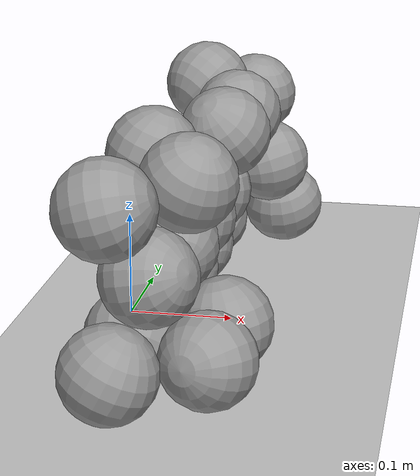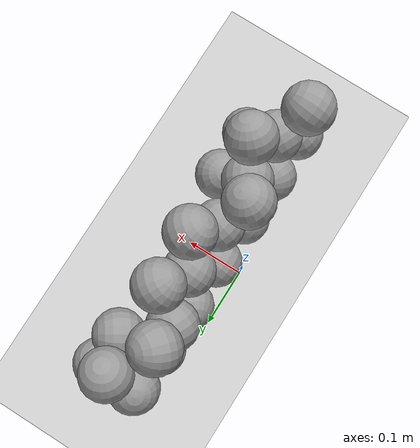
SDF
<sdf version="1.6">
 <world name="default">
  <model name="ground_plane">
   <static>1</static>
   <link name="link">
    <collision name="collision">
     <geometry><plane><normal>0 0 1</normal><size>100 100</size></plane></geometry>
     <surface>
      <contact><collide_bitmask>65535</collide_bitmask></contact>
      <friction><ode><mu>100</mu><mu2>50</mu2></ode></friction>
     </surface>
    </collision>
    <visual name="visual">
     <cast_shadows>0</cast_shadows>
     <geometry><plane><normal>0 0 1</normal><size>100 100</size></plane></geometry>
     <material>
      <script><uri>file://media/materials/scripts/gazebo.material</uri><name>Gazebo/Grey</name></script>
     </material>
    </visual>
   </link>
  </model>
  <model name="unit_sphere_clone_10">
   <link name="link">
    <inertial>
     <mass>0.000642099</mass>
     <inertia>
      <ixx>4.77879e-07</ixx>
      <ixy>0</ixy>
      <ixz>0</ixz>
      <iyy>4.77879e-07</iyy>
      <iyz>0</iyz>
      <izz>4.77879e-07</izz>
     </inertia>
    </inertial>
    <visual name="visual">
     <geometry><sphere><radius>0.0431354</radius></sphere></geometry>
     <material>
      <script><name>Gazebo/Grey</name><uri>file://media/materials/scripts/gazebo.material</uri></script>
      <shader type="pixel"/>
      <ambient>0.3 0.3 0.3 1</ambient>
      <diffuse>0.7 0.7 0.7 1</diffuse>
      <specular>0.01 0.01 0.01 1</specular>
      <emissive>0 0 0 1</emissive>
     </material>
    </visual>
    <collision name="collision">
     <geometry><sphere><radius>0.043135</radius></sphere></geometry>
     <surface>
      <friction>
       <ode><mu>1</mu><mu2>1</mu2><fdir1>0 0 0</fdir1><slip1>0</slip1><slip2>0</slip2></ode>
       <torsional>
        <coefficient>1</coefficient>
        <patch_radius>0</patch_radius>
        <surface_radius>0</surface_radius>
        <use_patch_radius>1</use_patch_radius>
        <ode><slip>0</slip></ode>
       </torsional>
      </friction>
      <bounce><restitution_coefficient>0</restitution_coefficient><threshold>1e+06</threshold></bounce>
      <contact>
       <collide_without_contact>0</collide_without_contact>
       <collide_without_contact_bitmask>1</collide_without_contact_bitmask>
       <collide_bitmask>1</collide_bitmask>
       <ode>
        <soft_cfm>0</soft_cfm>
        <soft_erp>0.2</soft_erp>
        <kp>1e+13</kp>
        <kd>1</kd>
        <max_vel>0.01</max_vel>
        <min_depth>0</min_depth>
       </ode>
       <bullet>
        <split_impulse>1</split_impulse>
        <split_impulse_penetration_threshold>-0.01</split_impulse_penetration_threshold>
        <soft_cfm>0</soft_cfm>
        <soft_erp>0.2</soft_erp>
        <kp>1e+13</kp>
        <kd>1</kd>
       </bullet>
      </contact>
     </surface>
    </collision>
   </link>
   <static>0</static>
   <pose>0.040377 -0.249262 0.043127 -0.408895 -0.242678 -2.0554</pose>
  </model>
  <model name="unit_sphere_clone_2_clone_2">
   <link name="link">
    <inertial>
     <mass>0.000642099</mass>
     <inertia>
      <ixx>4.77879e-07</ixx>
      <ixy>0</ixy>
      <ixz>0</ixz>
      <iyy>4.77879e-07</iyy>
      <iyz>0</iyz>
      <izz>4.77879e-07</izz>
     </inertia>
    </inertial>
    <visual name="visual">
     <geometry><sphere><radius>0.0431354</radius></sphere></geometry>
     <material>
      <script><name>Gazebo/Grey</name><uri>file://media/materials/scripts/gazebo.material</uri></script>
      <shader type="pixel"/>
      <ambient>0.3 0.3 0.3 1</ambient>
      <diffuse>0.7 0.7 0.7 1</diffuse>
      <specular>0.01 0.01 0.01 1</specular>
      <emissive>0 0 0 1</emissive>
     </material>
    </visual>
    <collision name="collision">
     <geometry><sphere><radius>0.043135</radius></sphere></geometry>
     <surface>
      <friction>
       <ode><mu>1</mu><mu2>1</mu2><fdir1>0 0 0</fdir1><slip1>0</slip1><slip2>0</slip2></ode>
       <torsional>
        <coefficient>1</coefficient>
        <patch_radius>0</patch_radius>
        <surface_radius>0</surface_radius>
        <use_patch_radius>1</use_patch_radius>
        <ode><slip>0</slip></ode>
       </torsional>
      </friction>
      <bounce><restitution_coefficient>0</restitution_coefficient><threshold>1e+06</threshold></bounce>
      <contact>
       <collide_without_contact>0</collide_without_contact>
       <collide_without_contact_bitmask>1</collide_without_contact_bitmask>
       <collide_bitmask>1</collide_bitmask>
       <ode>
        <soft_cfm>0</soft_cfm>
        <soft_erp>0.2</soft_erp>
        <kp>1e+13</kp>
        <kd>1</kd>
        <max_vel>0.01</max_vel>
        <min_depth>0</min_depth>
       </ode>
       <bullet>
        <split_impulse>1</split_impulse>
        <split_impulse_penetration_threshold>-0.01</split_impulse_penetration_threshold>
        <soft_cfm>0</soft_cfm>
        <soft_erp>0.2</soft_erp>
        <kp>1e+13</kp>
        <kd>1</kd>
       </bullet>
      </contact>
     </surface>
    </collision>
   </link>
   <static>0</static>
   <pose>0.041109 -0.076719 0.043134 -2.75724 -0.637083 -1.52655</pose>
  </model>
  <model name="unit_sphere_clone_2_clone_3">
   <link name="link">
    <inertial>
     <mass>0.000642099</mass>
     <inertia>
      <ixx>4.77879e-07</ixx>
      <ixy>0</ixy>
      <ixz>0</ixz>
      <iyy>4.77879e-07</iyy>
      <iyz>0</iyz>
      <izz>4.77879e-07</izz>
     </inertia>
    </inertial>
    <visual name="visual">
     <geometry><sphere><radius>0.0431354</radius></sphere></geometry>
     <material>
      <script><name>Gazebo/Grey</name><uri>file://media/materials/scripts/gazebo.material</uri></script>
      <shader type="pixel"/>
      <ambient>0.3 0.3 0.3 1</ambient>
      <diffuse>0.7 0.7 0.7 1</diffuse>
      <specular>0.01 0.01 0.01 1</specular>
      <emissive>0 0 0 1</emissive>
     </material>
    </visual>
    <collision name="collision">
     <geometry><sphere><radius>0.043135</radius></sphere></geometry>
     <surface>
      <friction>
       <ode><mu>1</mu><mu2>1</mu2><fdir1>0 0 0</fdir1><slip1>0</slip1><slip2>0</slip2></ode>
       <torsional>
        <coefficient>1</coefficient>
        <patch_radius>0</patch_radius>
        <surface_radius>0</surface_radius>
        <use_patch_radius>1</use_patch_radius>
        <ode><slip>0</slip></ode>
       </torsional>
      </friction>
      <bounce><restitution_coefficient>0</restitution_coefficient><threshold>1e+06</threshold></bounce>
      <contact>
       <collide_without_contact>0</collide_without_contact>
       <collide_without_contact_bitmask>1</collide_without_contact_bitmask>
       <collide_bitmask>1</collide_bitmask>
       <ode>
        <soft_cfm>0</soft_cfm>
        <soft_erp>0.2</soft_erp>
        <kp>1e+13</kp>
        <kd>1</kd>
        <max_vel>0.01</max_vel>
        <min_depth>0</min_depth>
       </ode>
       <bullet>
        <split_impulse>1</split_impulse>
        <split_impulse_penetration_threshold>-0.01</split_impulse_penetration_threshold>
        <soft_cfm>0</soft_cfm>
        <soft_erp>0.2</soft_erp>
        <kp>1e+13</kp>
        <kd>1</kd>
       </bullet>
      </contact>
     </surface>
    </collision>
   </link>
   <static>0</static>
   <pose>0.041477 0.00955 0.043135 -2.13247 0.784232 1.08708</pose>
  </model>
  <model name="unit_sphere_clone_2_clone_2_clone_3_clone_clone_clone_clone">
   <link name="link">
    <inertial>
     <mass>0.000642099</mass>
     <inertia>
      <ixx>4.77879e-07</ixx>
      <ixy>0</ixy>
      <ixz>0</ixz>
      <iyy>4.77879e-07</iyy>
      <iyz>0</iyz>
      <izz>4.77879e-07</izz>
     </inertia>
    </inertial>
    <visual name="visual">
     <geometry><sphere><radius>0.0431354</radius></sphere></geometry>
     <material>
      <script><name>Gazebo/Grey</name><uri>file://media/materials/scripts/gazebo.material</uri></script>
      <shader type="pixel"/>
      <ambient>0.3 0.3 0.3 1</ambient>
      <diffuse>0.7 0.7 0.7 1</diffuse>
      <specular>0.01 0.01 0.01 1</specular>
      <emissive>0 0 0 1</emissive>
     </material>
    </visual>
    <collision name="collision">
     <geometry><sphere><radius>0.043135</radius></sphere></geometry>
     <surface>
      <friction>
       <ode><mu>1</mu><mu2>1</mu2><fdir1>0 0 0</fdir1><slip1>0</slip1><slip2>0</slip2></ode>
       <torsional>
        <coefficient>1</coefficient>
        <patch_radius>0</patch_radius>
        <surface_radius>0</surface_radius>
        <use_patch_radius>1</use_patch_radius>
        <ode><slip>0</slip></ode>
       </torsional>
      </friction>
      <bounce><restitution_coefficient>0</restitution_coefficient><threshold>1e+06</threshold></bounce>
      <contact>
       <collide_without_contact>0</collide_without_contact>
       <collide_without_contact_bitmask>1</collide_without_contact_bitmask>
       <collide_bitmask>1</collide_bitmask>
       <ode>
        <soft_cfm>0</soft_cfm>
        <soft_erp>0.2</soft_erp>
        <kp>1e+13</kp>
        <kd>1</kd>
        <max_vel>0.01</max_vel>
        <min_depth>0</min_depth>
       </ode>
       <bullet>
        <split_impulse>1</split_impulse>
        <split_impulse_penetration_threshold>-0.01</split_impulse_penetration_threshold>
        <soft_cfm>0</soft_cfm>
        <soft_erp>0.2</soft_erp>
        <kp>1e+13</kp>
        <kd>1</kd>
       </bullet>
      </contact>
     </surface>
    </collision>
   </link>
   <static>0</static>
   <pose>0.04074 -0.162992 0.043135 -2.35775 0.164103 2.86462</pose>
  </model>
  <model name="unit_sphere_clone_2_clone_2_clone_3_clone_clone_clone_0_clone_clone_clone">
   <link name="link">
    <inertial>
     <mass>0.000642099</mass>
     <inertia>
      <ixx>4.77879e-07</ixx>
      <ixy>0</ixy>
      <ixz>0</ixz>
      <iyy>4.77879e-07</iyy>
      <iyz>0</iyz>
      <izz>4.77879e-07</izz>
     </inertia>
    </inertial>
    <visual name="visual">
     <geometry><sphere><radius>0.0431354</radius></sphere></geometry>
     <material>
      <script><name>Gazebo/Grey</name><uri>file://media/materials/scripts/gazebo.material</uri></script>
      <shader type="pixel"/>
      <ambient>0.3 0.3 0.3 1</ambient>
      <diffuse>0.7 0.7 0.7 1</diffuse>
      <specular>0.01 0.01 0.01 1</specular>
      <emissive>0 0 0 1</emissive>
     </material>
    </visual>
    <collision name="collision">
     <geometry><sphere><radius>0.043135</radius></sphere></geometry>
     <surface>
      <friction>
       <ode><mu>1</mu><mu2>1</mu2><fdir1>0 0 0</fdir1><slip1>0</slip1><slip2>0</slip2></ode>
       <torsional>
        <coefficient>1</coefficient>
        <patch_radius>0</patch_radius>
        <surface_radius>0</surface_radius>
        <use_patch_radius>1</use_patch_radius>
        <ode><slip>0</slip></ode>
       </torsional>
      </friction>
      <bounce><restitution_coefficient>0</restitution_coefficient><threshold>1e+06</threshold></bounce>
      <contact>
       <collide_without_contact>0</collide_without_contact>
       <collide_without_contact_bitmask>1</collide_without_contact_bitmask>
       <collide_bitmask>1</collide_bitmask>
       <ode>
        <soft_cfm>0</soft_cfm>
        <soft_erp>0.2</soft_erp>
        <kp>1e+13</kp>
        <kd>1</kd>
        <max_vel>0.01</max_vel>
        <min_depth>0</min_depth>
       </ode>
       <bullet>
        <split_impulse>1</split_impulse>
        <split_impulse_penetration_threshold>-0.01</split_impulse_penetration_threshold>
        <soft_cfm>0</soft_cfm>
        <soft_erp>0.2</soft_erp>
        <kp>1e+13</kp>
        <kd>1</kd>
       </bullet>
      </contact>
     </surface>
    </collision>
   </link>
   <static>0</static>
   <pose>0.115634 -0.120174 0.043135 3.12467 -0.26362 -0.311444</pose>
  </model>
  <model name="unit_sphere_clone_4_clone_1_clone_3_clone_1_clone_1">
   <link name="link">
    <inertial>
     <mass>0.000642099</mass>
     <inertia>
      <ixx>4.77879e-07</ixx>
      <ixy>0</ixy>
      <ixz>0</ixz>
      <iyy>4.77879e-07</iyy>
      <iyz>0</iyz>
      <izz>4.77879e-07</izz>
     </inertia>
    </inertial>
    <visual name="visual">
     <geometry><sphere><radius>0.0431354</radius></sphere></geometry>
     <material>
      <script><name>Gazebo/Grey</name><uri>file://media/materials/scripts/gazebo.material</uri></script>
      <shader type="pixel"/>
      <ambient>0.3 0.3 0.3 1</ambient>
      <diffuse>0.7 0.7 0.7 1</diffuse>
      <specular>0.01 0.01 0.01 1</specular>
      <emissive>0 0 0 1</emissive>
     </material>
    </visual>
    <collision name="collision">
     <geometry><sphere><radius>0.043135</radius></sphere></geometry>
     <surface>
      <friction>
       <ode><mu>1</mu><mu2>1</mu2><fdir1>0 0 0</fdir1><slip1>0</slip1><slip2>0</slip2></ode>
       <torsional>
        <coefficient>1</coefficient>
        <patch_radius>0</patch_radius>
        <surface_radius>0</surface_radius>
        <use_patch_radius>1</use_patch_radius>
        <ode><slip>0</slip></ode>
       </torsional>
      </friction>
      <bounce><restitution_coefficient>0</restitution_coefficient><threshold>1e+06</threshold></bounce>
      <contact>
       <collide_without_contact>0</collide_without_contact>
       <collide_without_contact_bitmask>1</collide_without_contact_bitmask>
       <collide_bitmask>1</collide_bitmask>
       <ode>
        <soft_cfm>0</soft_cfm>
        <soft_erp>0.2</soft_erp>
        <kp>1e+13</kp>
        <kd>1</kd>
        <max_vel>0.01</max_vel>
        <min_depth>0</min_depth>
       </ode>
       <bullet>
        <split_impulse>1</split_impulse>
        <split_impulse_penetration_threshold>-0.01</split_impulse_penetration_threshold>
        <soft_cfm>0</soft_cfm>
        <soft_erp>0.2</soft_erp>
        <kp>1e+13</kp>
        <kd>1</kd>
       </bullet>
      </contact>
     </surface>
    </collision>
   </link>
   <static>0</static>
   <pose>0.115269 -0.206444 0.043129 1.73496 0.561618 2.86032</pose>
  </model>
  <model name="unit_sphere_clone_4_clone_1_clone_3_clone_2_clone_1">
   <link name="link">
    <inertial>
     <mass>0.000642099</mass>
     <inertia>
      <ixx>4.77879e-07</ixx>
      <ixy>0</ixy>
      <ixz>0</ixz>
      <iyy>4.77879e-07</iyy>
      <iyz>0</iyz>
      <izz>4.77879e-07</izz>
     </inertia>
    </inertial>
    <visual name="visual">
     <geometry><sphere><radius>0.0431354</radius></sphere></geometry>
     <material>
      <script><name>Gazebo/Grey</name><uri>file://media/materials/scripts/gazebo.material</uri></script>
      <shader type="pixel"/>
      <ambient>0.3 0.3 0.3 1</ambient>
      <diffuse>0.7 0.7 0.7 1</diffuse>
      <specular>0.01 0.01 0.01 1</specular>
      <emissive>0 0 0 1</emissive>
     </material>
    </visual>
    <collision name="collision">
     <geometry><sphere><radius>0.043135</radius></sphere></geometry>
     <surface>
      <friction>
       <ode><mu>1</mu><mu2>1</mu2><fdir1>0 0 0</fdir1><slip1>0</slip1><slip2>0</slip2></ode>
       <torsional>
        <coefficient>1</coefficient>
        <patch_radius>0</patch_radius>
        <surface_radius>0</surface_radius>
        <use_patch_radius>1</use_patch_radius>
        <ode><slip>0</slip></ode>
       </torsional>
      </friction>
      <bounce><restitution_coefficient>0</restitution_coefficient><threshold>1e+06</threshold></bounce>
      <contact>
       <collide_without_contact>0</collide_without_contact>
       <collide_without_contact_bitmask>1</collide_without_contact_bitmask>
       <collide_bitmask>1</collide_bitmask>
       <ode>
        <soft_cfm>0</soft_cfm>
        <soft_erp>0.2</soft_erp>
        <kp>1e+13</kp>
        <kd>1</kd>
        <max_vel>0.01</max_vel>
        <min_depth>0</min_depth>
       </ode>
       <bullet>
        <split_impulse>1</split_impulse>
        <split_impulse_penetration_threshold>-0.01</split_impulse_penetration_threshold>
        <soft_cfm>0</soft_cfm>
        <soft_erp>0.2</soft_erp>
        <kp>1e+13</kp>
        <kd>1</kd>
       </bullet>
      </contact>
     </surface>
    </collision>
   </link>
   <static>0</static>
   <pose>0.041844 0.095815 0.043134 0.626852 -0.762396 -1.44623</pose>
  </model>
  <model name="unit_sphere_clone_4_clone_1_clone_3_clone_2_clone_2">
   <link name="link">
    <inertial>
     <mass>0.000642099</mass>
     <inertia>
      <ixx>4.77879e-07</ixx>
      <ixy>0</ixy>
      <ixz>0</ixz>
      <iyy>4.77879e-07</iyy>
      <iyz>0</iyz>
      <izz>4.77879e-07</izz>
     </inertia>
    </inertial>
    <visual name="visual">
     <geometry><sphere><radius>0.0431354</radius></sphere></geometry>
     <material>
      <script><name>Gazebo/Grey</name><uri>file://media/materials/scripts/gazebo.material</uri></script>
      <shader type="pixel"/>
      <ambient>0.3 0.3 0.3 1</ambient>
      <diffuse>0.7 0.7 0.7 1</diffuse>
      <specular>0.01 0.01 0.01 1</specular>
      <emissive>0 0 0 1</emissive>
     </material>
    </visual>
    <collision name="collision">
     <geometry><sphere><radius>0.043135</radius></sphere></geometry>
     <surface>
      <friction>
       <ode><mu>1</mu><mu2>1</mu2><fdir1>0 0 0</fdir1><slip1>0</slip1><slip2>0</slip2></ode>
       <torsional>
        <coefficient>1</coefficient>
        <patch_radius>0</patch_radius>
        <surface_radius>0</surface_radius>
        <use_patch_radius>1</use_patch_radius>
        <ode><slip>0</slip></ode>
       </torsional>
      </friction>
      <bounce><restitution_coefficient>0</restitution_coefficient><threshold>1e+06</threshold></bounce>
      <contact>
       <collide_without_contact>0</collide_without_contact>
       <collide_without_contact_bitmask>1</collide_without_contact_bitmask>
       <collide_bitmask>1</collide_bitmask>
       <ode>
        <soft_cfm>0</soft_cfm>
        <soft_erp>0.2</soft_erp>
        <kp>1e+13</kp>
        <kd>1</kd>
        <max_vel>0.01</max_vel>
        <min_depth>0</min_depth>
       </ode>
       <bullet>
        <split_impulse>1</split_impulse>
        <split_impulse_penetration_threshold>-0.01</split_impulse_penetration_threshold>
        <soft_cfm>0</soft_cfm>
        <soft_erp>0.2</soft_erp>
        <kp>1e+13</kp>
        <kd>1</kd>
       </bullet>
      </contact>
     </surface>
    </collision>
   </link>
   <static>0</static>
   <pose>0.066199 -0.033687 0.113575 1.45066 -0.655969 -0.184694</pose>
  </model>
  <model name="unit_sphere_clone_4_clone_1_clone_1_clone_1">
   <link name="link">
    <inertial>
     <mass>0.000642099</mass>
     <inertia>
      <ixx>4.77879e-07</ixx>
      <ixy>0</ixy>
      <ixz>0</ixz>
      <iyy>4.77879e-07</iyy>
      <iyz>0</iyz>
      <izz>4.77879e-07</izz>
     </inertia>
    </inertial>
    <visual name="visual">
     <geometry><sphere><radius>0.0431354</radius></sphere></geometry>
     <material>
      <script><name>Gazebo/Grey</name><uri>file://media/materials/scripts/gazebo.material</uri></script>
      <shader type="pixel"/>
      <ambient>0.3 0.3 0.3 1</ambient>
      <diffuse>0.7 0.7 0.7 1</diffuse>
      <specular>0.01 0.01 0.01 1</specular>
      <emissive>0 0 0 1</emissive>
     </material>
    </visual>
    <collision name="collision">
     <geometry><sphere><radius>0.043135</radius></sphere></geometry>
     <surface>
      <friction>
       <ode><mu>1</mu><mu2>1</mu2><fdir1>0 0 0</fdir1><slip1>0</slip1><slip2>0</slip2></ode>
       <torsional>
        <coefficient>1</coefficient>
        <patch_radius>0</patch_radius>
        <surface_radius>0</surface_radius>
        <use_patch_radius>1</use_patch_radius>
        <ode><slip>0</slip></ode>
       </torsional>
      </friction>
      <bounce><restitution_coefficient>0</restitution_coefficient><threshold>1e+06</threshold></bounce>
      <contact>
       <collide_without_contact>0</collide_without_contact>
       <collide_without_contact_bitmask>1</collide_without_contact_bitmask>
       <collide_bitmask>1</collide_bitmask>
       <ode>
        <soft_cfm>0</soft_cfm>
        <soft_erp>0.2</soft_erp>
        <kp>1e+13</kp>
        <kd>1</kd>
        <max_vel>0.01</max_vel>
        <min_depth>0</min_depth>
       </ode>
       <bullet>
        <split_impulse>1</split_impulse>
        <split_impulse_penetration_threshold>-0.01</split_impulse_penetration_threshold>
        <soft_cfm>0</soft_cfm>
        <soft_erp>0.2</soft_erp>
        <kp>1e+13</kp>
        <kd>1</kd>
       </bullet>
      </contact>
     </surface>
    </collision>
   </link>
   <static>0</static>
   <pose>0.114897 0.254144 0.043135 -0.314962 0.268613 -2.73245</pose>
  </model>
  <model name="unit_sphere_clone_4_clone_1_clone_3_clone_2_clone_3_clone_clone">
   <link name="link">
    <inertial>
     <mass>0.000642099</mass>
     <inertia>
      <ixx>4.77879e-07</ixx>
      <ixy>0</ixy>
      <ixz>0</ixz>
      <iyy>4.77879e-07</iyy>
      <iyz>0</iyz>
      <izz>4.77879e-07</izz>
     </inertia>
    </inertial>
    <visual name="visual">
     <geometry><sphere><radius>0.0431354</radius></sphere></geometry>
     <material>
      <script><name>Gazebo/Grey</name><uri>file://media/materials/scripts/gazebo.material</uri></script>
      <shader type="pixel"/>
      <ambient>0.3 0.3 0.3 1</ambient>
      <diffuse>0.7 0.7 0.7 1</diffuse>
      <specular>0.01 0.01 0.01 1</specular>
      <emissive>0 0 0 1</emissive>
     </material>
    </visual>
    <collision name="collision">
     <geometry><sphere><radius>0.043135</radius></sphere></geometry>
     <surface>
      <friction>
       <ode><mu>1</mu><mu2>1</mu2><fdir1>0 0 0</fdir1><slip1>0</slip1><slip2>0</slip2></ode>
       <torsional>
        <coefficient>1</coefficient>
        <patch_radius>0</patch_radius>
        <surface_radius>0</surface_radius>
        <use_patch_radius>1</use_patch_radius>
        <ode><slip>0</slip></ode>
       </torsional>
      </friction>
      <bounce><restitution_coefficient>0</restitution_coefficient><threshold>1e+06</threshold></bounce>
      <contact>
       <collide_without_contact>0</collide_without_contact>
       <collide_without_contact_bitmask>1</collide_without_contact_bitmask>
       <collide_bitmask>1</collide_bitmask>
       <ode>
        <soft_cfm>0</soft_cfm>
        <soft_erp>0.2</soft_erp>
        <kp>1e+13</kp>
        <kd>1</kd>
        <max_vel>0.01</max_vel>
        <min_depth>0</min_depth>
       </ode>
       <bullet>
        <split_impulse>1</split_impulse>
        <split_impulse_penetration_threshold>-0.01</split_impulse_penetration_threshold>
        <soft_cfm>0</soft_cfm>
        <soft_erp>0.2</soft_erp>
        <kp>1e+13</kp>
        <kd>1</kd>
       </bullet>
      </contact>
     </surface>
    </collision>
   </link>
   <static>0</static>
   <pose>0.066575 0.052583 0.113568 -1.90121 -0.997723 0.176272</pose>
  </model>
  <model name="unit_sphere_clone_4_clone_1_clone_3_clone_1_clone_clone_0_clone_clone_0">
   <link name="link">
    <inertial>
     <mass>0.000642099</mass>
     <inertia>
      <ixx>4.77879e-07</ixx>
      <ixy>0</ixy>
      <ixz>0</ixz>
      <iyy>4.77879e-07</iyy>
      <iyz>0</iyz>
      <izz>4.77879e-07</izz>
     </inertia>
    </inertial>
    <visual name="visual">
     <geometry><sphere><radius>0.0431354</radius></sphere></geometry>
     <material>
      <script><name>Gazebo/Grey</name><uri>file://media/materials/scripts/gazebo.material</uri></script>
      <shader type="pixel"/>
      <ambient>0.3 0.3 0.3 1</ambient>
      <diffuse>0.7 0.7 0.7 1</diffuse>
      <specular>0.01 0.01 0.01 1</specular>
      <emissive>0 0 0 1</emissive>
     </material>
    </visual>
    <collision name="collision">
     <geometry><sphere><radius>0.043135</radius></sphere></geometry>
     <surface>
      <friction>
       <ode><mu>1</mu><mu2>1</mu2><fdir1>0 0 0</fdir1><slip1>0</slip1><slip2>0</slip2></ode>
       <torsional>
        <coefficient>1</coefficient>
        <patch_radius>0</patch_radius>
        <surface_radius>0</surface_radius>
        <use_patch_radius>1</use_patch_radius>
        <ode><slip>0</slip></ode>
       </torsional>
      </friction>
      <bounce><restitution_coefficient>0</restitution_coefficient><threshold>1e+06</threshold></bounce>
      <contact>
       <collide_without_contact>0</collide_without_contact>
       <collide_without_contact_bitmask>1</collide_without_contact_bitmask>
       <collide_bitmask>1</collide_bitmask>
       <ode>
        <soft_cfm>0</soft_cfm>
        <soft_erp>0.2</soft_erp>
        <kp>1e+13</kp>
        <kd>1</kd>
        <max_vel>0.01</max_vel>
        <min_depth>0</min_depth>
       </ode>
       <bullet>
        <split_impulse>1</split_impulse>
        <split_impulse_penetration_threshold>-0.01</split_impulse_penetration_threshold>
        <soft_cfm>0</soft_cfm>
        <soft_erp>0.2</soft_erp>
        <kp>1e+13</kp>
        <kd>1</kd>
       </bullet>
      </contact>
     </surface>
    </collision>
   </link>
   <static>0</static>
   <pose>0.065463 -0.206229 0.113575 -1.92726 0.692975 0.900481</pose>
  </model>
  <model name="unit_sphere_clone_4_clone_1_clone_3_clone_1_clone_clone_0_clone_clone_0_clone">
   <link name="link">
    <inertial>
     <mass>0.000642099</mass>
     <inertia>
      <ixx>4.77879e-07</ixx>
      <ixy>0</ixy>
      <ixz>0</ixz>
      <iyy>4.77879e-07</iyy>
      <iyz>0</iyz>
      <izz>4.77879e-07</izz>
     </inertia>
    </inertial>
    <visual name="visual">
     <geometry><sphere><radius>0.0431354</radius></sphere></geometry>
     <material>
      <script><name>Gazebo/Grey</name><uri>file://media/materials/scripts/gazebo.material</uri></script>
      <shader type="pixel"/>
      <ambient>0.3 0.3 0.3 1</ambient>
      <diffuse>0.7 0.7 0.7 1</diffuse>
      <specular>0.01 0.01 0.01 1</specular>
      <emissive>0 0 0 1</emissive>
     </material>
    </visual>
    <collision name="collision">
     <geometry><sphere><radius>0.043135</radius></sphere></geometry>
     <surface>
      <friction>
       <ode><mu>1</mu><mu2>1</mu2><fdir1>0 0 0</fdir1><slip1>0</slip1><slip2>0</slip2></ode>
       <torsional>
        <coefficient>1</coefficient>
        <patch_radius>0</patch_radius>
        <surface_radius>0</surface_radius>
        <use_patch_radius>1</use_patch_radius>
        <ode><slip>0</slip></ode>
       </torsional>
      </friction>
      <bounce><restitution_coefficient>0</restitution_coefficient><threshold>1e+06</threshold></bounce>
      <contact>
       <collide_without_contact>0</collide_without_contact>
       <collide_without_contact_bitmask>1</collide_without_contact_bitmask>
       <collide_bitmask>1</collide_bitmask>
       <ode>
        <soft_cfm>0</soft_cfm>
        <soft_erp>0.2</soft_erp>
        <kp>1e+13</kp>
        <kd>1</kd>
        <max_vel>0.01</max_vel>
        <min_depth>0</min_depth>
       </ode>
       <bullet>
        <split_impulse>1</split_impulse>
        <split_impulse_penetration_threshold>-0.01</split_impulse_penetration_threshold>
        <soft_cfm>0</soft_cfm>
        <soft_erp>0.2</soft_erp>
        <kp>1e+13</kp>
        <kd>1</kd>
       </bullet>
      </contact>
     </surface>
    </collision>
   </link>
   <static>0</static>
   <pose>0.065833 -0.119963 0.113571 -0.071005 -1.34314 -1.10821</pose>
  </model>
  <model name="unit_sphere_clone_4_clone_1_clone_3_clone_1_clone_clone_0_clone_clone_0_clone_clone">
   <link name="link">
    <inertial>
     <mass>0.000642099</mass>
     <inertia>
      <ixx>4.77879e-07</ixx>
      <ixy>0</ixy>
      <ixz>0</ixz>
      <iyy>4.77879e-07</iyy>
      <iyz>0</iyz>
      <izz>4.77879e-07</izz>
     </inertia>
    </inertial>
    <visual name="visual">
     <geometry><sphere><radius>0.0431354</radius></sphere></geometry>
     <material>
      <script><name>Gazebo/Grey</name><uri>file://media/materials/scripts/gazebo.material</uri></script>
      <shader type="pixel"/>
      <ambient>0.3 0.3 0.3 1</ambient>
      <diffuse>0.7 0.7 0.7 1</diffuse>
      <specular>0.01 0.01 0.01 1</specular>
      <emissive>0 0 0 1</emissive>
     </material>
    </visual>
    <collision name="collision">
     <geometry><sphere><radius>0.043135</radius></sphere></geometry>
     <surface>
      <friction>
       <ode><mu>1</mu><mu2>1</mu2><fdir1>0 0 0</fdir1><slip1>0</slip1><slip2>0</slip2></ode>
       <torsional>
        <coefficient>1</coefficient>
        <patch_radius>0</patch_radius>
        <surface_radius>0</surface_radius>
        <use_patch_radius>1</use_patch_radius>
        <ode><slip>0</slip></ode>
       </torsional>
      </friction>
      <bounce><restitution_coefficient>0</restitution_coefficient><threshold>1e+06</threshold></bounce>
      <contact>
       <collide_without_contact>0</collide_without_contact>
       <collide_without_contact_bitmask>1</collide_without_contact_bitmask>
       <collide_bitmask>1</collide_bitmask>
       <ode>
        <soft_cfm>0</soft_cfm>
        <soft_erp>0.2</soft_erp>
        <kp>1e+13</kp>
        <kd>1</kd>
        <max_vel>0.01</max_vel>
        <min_depth>0</min_depth>
       </ode>
       <bullet>
        <split_impulse>1</split_impulse>
        <split_impulse_penetration_threshold>-0.01</split_impulse_penetration_threshold>
        <soft_cfm>0</soft_cfm>
        <soft_erp>0.2</soft_erp>
        <kp>1e+13</kp>
        <kd>1</kd>
       </bullet>
      </contact>
     </surface>
    </collision>
   </link>
   <static>0</static>
   <pose>0.091314 0.00935 0.184005 -0.571563 -0.50992 1.90954</pose>
  </model>
  <model name="unit_sphere_clone_4_clone_1_clone_3_clone_1_clone_clone_0_clone_clone_0_clone_clone_1">
   <link name="link">
    <inertial>
     <mass>0.000642099</mass>
     <inertia>
      <ixx>4.77879e-07</ixx>
      <ixy>0</ixy>
      <ixz>0</ixz>
      <iyy>4.77879e-07</iyy>
      <iyz>0</iyz>
      <izz>4.77879e-07</izz>
     </inertia>
    </inertial>
    <visual name="visual">
     <geometry><sphere><radius>0.0431354</radius></sphere></geometry>
     <material>
      <script><name>Gazebo/Grey</name><uri>file://media/materials/scripts/gazebo.material</uri></script>
      <shader type="pixel"/>
      <ambient>0.3 0.3 0.3 1</ambient>
      <diffuse>0.7 0.7 0.7 1</diffuse>
      <specular>0.01 0.01 0.01 1</specular>
      <emissive>0 0 0 1</emissive>
     </material>
    </visual>
    <collision name="collision">
     <geometry><sphere><radius>0.043135</radius></sphere></geometry>
     <surface>
      <friction>
       <ode><mu>1</mu><mu2>1</mu2><fdir1>0 0 0</fdir1><slip1>0</slip1><slip2>0</slip2></ode>
       <torsional>
        <coefficient>1</coefficient>
        <patch_radius>0</patch_radius>
        <surface_radius>0</surface_radius>
        <use_patch_radius>1</use_patch_radius>
        <ode><slip>0</slip></ode>
       </torsional>
      </friction>
      <bounce><restitution_coefficient>0</restitution_coefficient><threshold>1e+06</threshold></bounce>
      <contact>
       <collide_without_contact>0</collide_without_contact>
       <collide_without_contact_bitmask>1</collide_without_contact_bitmask>
       <collide_bitmask>1</collide_bitmask>
       <ode>
        <soft_cfm>0</soft_cfm>
        <soft_erp>0.2</soft_erp>
        <kp>1e+13</kp>
        <kd>1</kd>
        <max_vel>0.01</max_vel>
        <min_depth>0</min_depth>
       </ode>
       <bullet>
        <split_impulse>1</split_impulse>
        <split_impulse_penetration_threshold>-0.01</split_impulse_penetration_threshold>
        <soft_cfm>0</soft_cfm>
        <soft_erp>0.2</soft_erp>
        <kp>1e+13</kp>
        <kd>1</kd>
       </bullet>
      </contact>
     </surface>
    </collision>
   </link>
   <static>0</static>
   <pose>0.09054 -0.163201 0.184017 -2.72011 -0.39398 1.63411</pose>
  </model>
  <model name="unit_sphere_clone_4_clone_1_clone_3_clone_1_clone_clone_0_clone_clone_0_clone_clone_clone_4_clone">
   <link name="link">
    <inertial>
     <mass>0.000642099</mass>
     <inertia>
      <ixx>4.77879e-07</ixx>
      <ixy>0</ixy>
      <ixz>0</ixz>
      <iyy>4.77879e-07</iyy>
      <iyz>0</iyz>
      <izz>4.77879e-07</izz>
     </inertia>
    </inertial>
    <visual name="visual">
     <geometry><sphere><radius>0.0431354</radius></sphere></geometry>
     <material>
      <script><name>Gazebo/Grey</name><uri>file://media/materials/scripts/gazebo.material</uri></script>
      <shader type="pixel"/>
      <ambient>0.3 0.3 0.3 1</ambient>
      <diffuse>0.7 0.7 0.7 1</diffuse>
      <specular>0.01 0.01 0.01 1</specular>
      <emissive>0 0 0 1</emissive>
     </material>
    </visual>
    <collision name="collision">
     <geometry><sphere><radius>0.043135</radius></sphere></geometry>
     <surface>
      <friction>
       <ode><mu>1</mu><mu2>1</mu2><fdir1>0 0 0</fdir1><slip1>0</slip1><slip2>0</slip2></ode>
       <torsional>
        <coefficient>1</coefficient>
        <patch_radius>0</patch_radius>
        <surface_radius>0</surface_radius>
        <use_patch_radius>1</use_patch_radius>
        <ode><slip>0</slip></ode>
       </torsional>
      </friction>
      <bounce><restitution_coefficient>0</restitution_coefficient><threshold>1e+06</threshold></bounce>
      <contact>
       <collide_without_contact>0</collide_without_contact>
       <collide_without_contact_bitmask>1</collide_without_contact_bitmask>
       <collide_bitmask>1</collide_bitmask>
       <ode>
        <soft_cfm>0</soft_cfm>
        <soft_erp>0.2</soft_erp>
        <kp>1e+13</kp>
        <kd>1</kd>
        <max_vel>0.01</max_vel>
        <min_depth>0</min_depth>
       </ode>
       <bullet>
        <split_impulse>1</split_impulse>
        <split_impulse_penetration_threshold>-0.01</split_impulse_penetration_threshold>
        <soft_cfm>0</soft_cfm>
        <soft_erp>0.2</soft_erp>
        <kp>1e+13</kp>
        <kd>1</kd>
       </bullet>
      </contact>
     </surface>
    </collision>
   </link>
   <static>0</static>
   <pose>0.042284 0.182083 0.043136 2.54124 -0.47377 2.48565</pose>
  </model>
  <model name="unit_sphere_clone_4_clone_1_clone_3_clone_1_clone_clone_0_clone_clone_0_clone_clone_clone_4_clone_0">
   <link name="link">
    <inertial>
     <mass>0.000642099</mass>
     <inertia>
      <ixx>4.77879e-07</ixx>
      <ixy>0</ixy>
      <ixz>0</ixz>
      <iyy>4.77879e-07</iyy>
      <iyz>0</iyz>
      <izz>4.77879e-07</izz>
     </inertia>
    </inertial>
    <visual name="visual">
     <geometry><sphere><radius>0.0431354</radius></sphere></geometry>
     <material>
      <script><name>Gazebo/Grey</name><uri>file://media/materials/scripts/gazebo.material</uri></script>
      <shader type="pixel"/>
      <ambient>0.3 0.3 0.3 1</ambient>
      <diffuse>0.7 0.7 0.7 1</diffuse>
      <specular>0.01 0.01 0.01 1</specular>
      <emissive>0 0 0 1</emissive>
     </material>
    </visual>
    <collision name="collision">
     <geometry><sphere><radius>0.043135</radius></sphere></geometry>
     <surface>
      <friction>
       <ode><mu>1</mu><mu2>1</mu2><fdir1>0 0 0</fdir1><slip1>0</slip1><slip2>0</slip2></ode>
       <torsional>
        <coefficient>1</coefficient>
        <patch_radius>0</patch_radius>
        <surface_radius>0</surface_radius>
        <use_patch_radius>1</use_patch_radius>
        <ode><slip>0</slip></ode>
       </torsional>
      </friction>
      <bounce><restitution_coefficient>0</restitution_coefficient><threshold>1e+06</threshold></bounce>
      <contact>
       <collide_without_contact>0</collide_without_contact>
       <collide_without_contact_bitmask>1</collide_without_contact_bitmask>
       <collide_bitmask>1</collide_bitmask>
       <ode>
        <soft_cfm>0</soft_cfm>
        <soft_erp>0.2</soft_erp>
        <kp>1e+13</kp>
        <kd>1</kd>
        <max_vel>0.01</max_vel>
        <min_depth>0</min_depth>
       </ode>
       <bullet>
        <split_impulse>1</split_impulse>
        <split_impulse_penetration_threshold>-0.01</split_impulse_penetration_threshold>
        <soft_cfm>0</soft_cfm>
        <soft_erp>0.2</soft_erp>
        <kp>1e+13</kp>
        <kd>1</kd>
       </bullet>
      </contact>
     </surface>
    </collision>
   </link>
   <static>0</static>
   <pose>0.041113 -0.076722 0.184011 2.8592 -0.213666 -2.18184</pose>
  </model>
  <model name="unit_sphere_clone_4_clone_1_clone_3_clone_1_clone_clone_0_clone_clone_0_clone_clone_clone_4_clone_1">
   <link name="link">
    <inertial>
     <mass>0.000642099</mass>
     <inertia>
      <ixx>4.77879e-07</ixx>
      <ixy>0</ixy>
      <ixz>0</ixz>
      <iyy>4.77879e-07</iyy>
      <iyz>0</iyz>
      <izz>4.77879e-07</izz>
     </inertia>
    </inertial>
    <visual name="visual">
     <geometry><sphere><radius>0.0431354</radius></sphere></geometry>
     <material>
      <script><name>Gazebo/Grey</name><uri>file://media/materials/scripts/gazebo.material</uri></script>
      <shader type="pixel"/>
      <ambient>0.3 0.3 0.3 1</ambient>
      <diffuse>0.7 0.7 0.7 1</diffuse>
      <specular>0.01 0.01 0.01 1</specular>
      <emissive>0 0 0 1</emissive>
     </material>
    </visual>
    <collision name="collision">
     <geometry><sphere><radius>0.043135</radius></sphere></geometry>
     <surface>
      <friction>
       <ode><mu>1</mu><mu2>1</mu2><fdir1>0 0 0</fdir1><slip1>0</slip1><slip2>0</slip2></ode>
       <torsional>
        <coefficient>1</coefficient>
        <patch_radius>0</patch_radius>
        <surface_radius>0</surface_radius>
        <use_patch_radius>1</use_patch_radius>
        <ode><slip>0</slip></ode>
       </torsional>
      </friction>
      <bounce><restitution_coefficient>0</restitution_coefficient><threshold>1e+06</threshold></bounce>
      <contact>
       <collide_without_contact>0</collide_without_contact>
       <collide_without_contact_bitmask>1</collide_without_contact_bitmask>
       <collide_bitmask>1</collide_bitmask>
       <ode>
        <soft_cfm>0</soft_cfm>
        <soft_erp>0.2</soft_erp>
        <kp>1e+13</kp>
        <kd>1</kd>
        <max_vel>0.01</max_vel>
        <min_depth>0</min_depth>
       </ode>
       <bullet>
        <split_impulse>1</split_impulse>
        <split_impulse_penetration_threshold>-0.01</split_impulse_penetration_threshold>
        <soft_cfm>0</soft_cfm>
        <soft_erp>0.2</soft_erp>
        <kp>1e+13</kp>
        <kd>1</kd>
       </bullet>
      </contact>
     </surface>
    </collision>
   </link>
   <static>0</static>
   <pose>0.040381 -0.249263 0.184013 -1.24657 -0.421943 -1.69343</pose>
  </model>
  <model name="unit_sphere_clone_4_clone_1_clone_3_clone_1_clone_clone_0_clone_clone_0_clone_clone_clone_0_clone_3">
   <link name="link">
    <inertial>
     <mass>0.000642099</mass>
     <inertia>
      <ixx>4.77879e-07</ixx>
      <ixy>0</ixy>
      <ixz>0</ixz>
      <iyy>4.77879e-07</iyy>
      <iyz>0</iyz>
      <izz>4.77879e-07</izz>
     </inertia>
    </inertial>
    <visual name="visual">
     <geometry><sphere><radius>0.0431354</radius></sphere></geometry>
     <material>
      <script><name>Gazebo/Grey</name><uri>file://media/materials/scripts/gazebo.material</uri></script>
      <shader type="pixel"/>
      <ambient>0.3 0.3 0.3 1</ambient>
      <diffuse>0.7 0.7 0.7 1</diffuse>
      <specular>0.01 0.01 0.01 1</specular>
      <emissive>0 0 0 1</emissive>
     </material>
    </visual>
    <collision name="collision">
     <geometry><sphere><radius>0.043135</radius></sphere></geometry>
     <surface>
      <friction>
       <ode><mu>1</mu><mu2>1</mu2><fdir1>0 0 0</fdir1><slip1>0</slip1><slip2>0</slip2></ode>
       <torsional>
        <coefficient>1</coefficient>
        <patch_radius>0</patch_radius>
        <surface_radius>0</surface_radius>
        <use_patch_radius>1</use_patch_radius>
        <ode><slip>0</slip></ode>
       </torsional>
      </friction>
      <bounce><restitution_coefficient>0</restitution_coefficient><threshold>1e+06</threshold></bounce>
      <contact>
       <collide_without_contact>0</collide_without_contact>
       <collide_without_contact_bitmask>1</collide_without_contact_bitmask>
       <collide_bitmask>1</collide_bitmask>
       <ode>
        <soft_cfm>0</soft_cfm>
        <soft_erp>0.2</soft_erp>
        <kp>1e+13</kp>
        <kd>1</kd>
        <max_vel>0.01</max_vel>
        <min_depth>0</min_depth>
       </ode>
       <bullet>
        <split_impulse>1</split_impulse>
        <split_impulse_penetration_threshold>-0.01</split_impulse_penetration_threshold>
        <soft_cfm>0</soft_cfm>
        <soft_erp>0.2</soft_erp>
        <kp>1e+13</kp>
        <kd>1</kd>
       </bullet>
      </contact>
     </surface>
    </collision>
   </link>
   <static>0</static>
   <pose>0.042046 0.138952 0.117849 2.08286 0.620424 -1.80411</pose>
  </model>
  <model name="unit_sphere_clone_4_clone_1_clone_3_clone_1_clone_clone_0_clone_clone_0_clone_clone_clone_0_clone_4">
   <link name="link">
    <inertial>
     <mass>0.000642099</mass>
     <inertia>
      <ixx>4.77879e-07</ixx>
      <ixy>0</ixy>
      <ixz>0</ixz>
      <iyy>4.77879e-07</iyy>
      <iyz>0</iyz>
      <izz>4.77879e-07</izz>
     </inertia>
    </inertial>
    <visual name="visual">
     <geometry><sphere><radius>0.0431354</radius></sphere></geometry>
     <material>
      <script><name>Gazebo/Grey</name><uri>file://media/materials/scripts/gazebo.material</uri></script>
      <shader type="pixel"/>
      <ambient>0.3 0.3 0.3 1</ambient>
      <diffuse>0.7 0.7 0.7 1</diffuse>
      <specular>0.01 0.01 0.01 1</specular>
      <emissive>0 0 0 1</emissive>
     </material>
    </visual>
    <collision name="collision">
     <geometry><sphere><radius>0.043135</radius></sphere></geometry>
     <surface>
      <friction>
       <ode><mu>1</mu><mu2>1</mu2><fdir1>0 0 0</fdir1><slip1>0</slip1><slip2>0</slip2></ode>
       <torsional>
        <coefficient>1</coefficient>
        <patch_radius>0</patch_radius>
        <surface_radius>0</surface_radius>
        <use_patch_radius>1</use_patch_radius>
        <ode><slip>0</slip></ode>
       </torsional>
      </friction>
      <bounce><restitution_coefficient>0</restitution_coefficient><threshold>1e+06</threshold></bounce>
      <contact>
       <collide_without_contact>0</collide_without_contact>
       <collide_without_contact_bitmask>1</collide_without_contact_bitmask>
       <collide_bitmask>1</collide_bitmask>
       <ode>
        <soft_cfm>0</soft_cfm>
        <soft_erp>0.2</soft_erp>
        <kp>1e+13</kp>
        <kd>1</kd>
        <max_vel>0.01</max_vel>
        <min_depth>0</min_depth>
       </ode>
       <bullet>
        <split_impulse>1</split_impulse>
        <split_impulse_penetration_threshold>-0.01</split_impulse_penetration_threshold>
        <soft_cfm>0</soft_cfm>
        <soft_erp>0.2</soft_erp>
        <kp>1e+13</kp>
        <kd>1</kd>
       </bullet>
      </contact>
     </surface>
    </collision>
   </link>
   <static>0</static>
   <pose>0.042516 0.254464 0.090075 -0.018645 -0.364226 -0.538805</pose>
  </model>
  <model name="unit_sphere_clone_4_clone_1_clone_3_clone_1_clone_clone_0_clone_clone_0_clone_clone_clone_4">
   <link name="link">
    <inertial>
     <mass>0.000642099</mass>
     <inertia>
      <ixx>4.77879e-07</ixx>
      <ixy>0</ixy>
      <ixz>0</ixz>
      <iyy>4.77879e-07</iyy>
      <iyz>0</iyz>
      <izz>4.77879e-07</izz>
     </inertia>
    </inertial>
    <visual name="visual">
     <geometry><sphere><radius>0.0431354</radius></sphere></geometry>
     <material>
      <script><name>Gazebo/Grey</name><uri>file://media/materials/scripts/gazebo.material</uri></script>
      <shader type="pixel"/>
      <ambient>0.3 0.3 0.3 1</ambient>
      <diffuse>0.7 0.7 0.7 1</diffuse>
      <specular>0.01 0.01 0.01 1</specular>
      <emissive>0 0 0 1</emissive>
     </material>
    </visual>
    <collision name="collision">
     <geometry><sphere><radius>0.043135</radius></sphere></geometry>
     <surface>
      <friction>
       <ode><mu>1</mu><mu2>1</mu2><fdir1>0 0 0</fdir1><slip1>0</slip1><slip2>0</slip2></ode>
       <torsional>
        <coefficient>1</coefficient>
        <patch_radius>0</patch_radius>
        <surface_radius>0</surface_radius>
        <use_patch_radius>1</use_patch_radius>
        <ode><slip>0</slip></ode>
       </torsional>
      </friction>
      <bounce><restitution_coefficient>0</restitution_coefficient><threshold>1e+06</threshold></bounce>
      <contact>
       <collide_without_contact>0</collide_without_contact>
       <collide_without_contact_bitmask>1</collide_without_contact_bitmask>
       <collide_bitmask>1</collide_bitmask>
       <ode>
        <soft_cfm>0</soft_cfm>
        <soft_erp>0.2</soft_erp>
        <kp>1e+13</kp>
        <kd>1</kd>
        <max_vel>0.01</max_vel>
        <min_depth>0</min_depth>
       </ode>
       <bullet>
        <split_impulse>1</split_impulse>
        <split_impulse_penetration_threshold>-0.01</split_impulse_penetration_threshold>
        <soft_cfm>0</soft_cfm>
        <soft_erp>0.2</soft_erp>
        <kp>1e+13</kp>
        <kd>1</kd>
       </bullet>
      </contact>
     </surface>
    </collision>
   </link>
   <static>0</static>
   <pose>0.105547 0.196211 0.106371 -0.881093 -1.21764 -1.64486</pose>
  </model>
  <model name="unit_sphere_clone_4_clone_1_clone_3_clone_1_clone_clone_0_clone_clone_0_clone_clone_clone_3_clone_0">
   <link name="link">
    <inertial>
     <mass>0.000642099</mass>
     <inertia>
      <ixx>4.77879e-07</ixx>
      <ixy>0</ixy>
      <ixz>0</ixz>
      <iyy>4.77879e-07</iyy>
      <iyz>0</iyz>
      <izz>4.77879e-07</izz>
     </inertia>
    </inertial>
    <visual name="visual">
     <geometry><sphere><radius>0.0431354</radius></sphere></geometry>
     <material>
      <script><name>Gazebo/Grey</name><uri>file://media/materials/scripts/gazebo.material</uri></script>
      <shader type="pixel"/>
      <ambient>0.3 0.3 0.3 1</ambient>
      <diffuse>0.7 0.7 0.7 1</diffuse>
      <specular>0.01 0.01 0.01 1</specular>
      <emissive>0 0 0 1</emissive>
     </material>
    </visual>
    <collision name="collision">
     <geometry><sphere><radius>0.043135</radius></sphere></geometry>
     <surface>
      <friction>
       <ode><mu>1</mu><mu2>1</mu2><fdir1>0 0 0</fdir1><slip1>0</slip1><slip2>0</slip2></ode>
       <torsional>
        <coefficient>1</coefficient>
        <patch_radius>0</patch_radius>
        <surface_radius>0</surface_radius>
        <use_patch_radius>1</use_patch_radius>
        <ode><slip>0</slip></ode>
       </torsional>
      </friction>
      <bounce><restitution_coefficient>0</restitution_coefficient><threshold>1e+06</threshold></bounce>
      <contact>
       <collide_without_contact>0</collide_without_contact>
       <collide_without_contact_bitmask>1</collide_without_contact_bitmask>
       <collide_bitmask>1</collide_bitmask>
       <ode>
        <soft_cfm>0</soft_cfm>
        <soft_erp>0.2</soft_erp>
        <kp>1e+13</kp>
        <kd>1</kd>
        <max_vel>0.01</max_vel>
        <min_depth>0</min_depth>
       </ode>
       <bullet>
        <split_impulse>1</split_impulse>
        <split_impulse_penetration_threshold>-0.01</split_impulse_penetration_threshold>
        <soft_cfm>0</soft_cfm>
        <soft_erp>0.2</soft_erp>
        <kp>1e+13</kp>
        <kd>1</kd>
       </bullet>
      </contact>
     </surface>
    </collision>
   </link>
   <static>0</static>
   <pose>0.088263 0.102203 0.180746 -0.843549 -0.301059 2.27895</pose>
  </model>
  <model name="unit_sphere_clone_4_clone_1_clone_3_clone_1_clone_clone_0_clone_clone_0_clone_clone_clone_3_clone_1">
   <link name="link">
    <inertial>
     <mass>0.000642099</mass>
     <inertia>
      <ixx>4.77879e-07</ixx>
      <ixy>0</ixy>
      <ixz>0</ixz>
      <iyy>4.77879e-07</iyy>
      <iyz>0</iyz>
      <izz>4.77879e-07</izz>
     </inertia>
    </inertial>
    <visual name="visual">
     <geometry><sphere><radius>0.0431354</radius></sphere></geometry>
     <material>
      <script><name>Gazebo/Grey</name><uri>file://media/materials/scripts/gazebo.material</uri></script>
      <shader type="pixel"/>
      <ambient>0.3 0.3 0.3 1</ambient>
      <diffuse>0.7 0.7 0.7 1</diffuse>
      <specular>0.01 0.01 0.01 1</specular>
      <emissive>0 0 0 1</emissive>
     </material>
    </visual>
    <collision name="collision">
     <geometry><sphere><radius>0.043135</radius></sphere></geometry>
     <surface>
      <friction>
       <ode><mu>1</mu><mu2>1</mu2><fdir1>0 0 0</fdir1><slip1>0</slip1><slip2>0</slip2></ode>
       <torsional>
        <coefficient>1</coefficient>
        <patch_radius>0</patch_radius>
        <surface_radius>0</surface_radius>
        <use_patch_radius>1</use_patch_radius>
        <ode><slip>0</slip></ode>
       </torsional>
      </friction>
      <bounce><restitution_coefficient>0</restitution_coefficient><threshold>1e+06</threshold></bounce>
      <contact>
       <collide_without_contact>0</collide_without_contact>
       <collide_without_contact_bitmask>1</collide_without_contact_bitmask>
       <collide_bitmask>1</collide_bitmask>
       <ode>
        <soft_cfm>0</soft_cfm>
        <soft_erp>0.2</soft_erp>
        <kp>1e+13</kp>
        <kd>1</kd>
        <max_vel>0.01</max_vel>
        <min_depth>0</min_depth>
       </ode>
       <bullet>
        <split_impulse>1</split_impulse>
        <split_impulse_penetration_threshold>-0.01</split_impulse_penetration_threshold>
        <soft_cfm>0</soft_cfm>
        <soft_erp>0.2</soft_erp>
        <kp>1e+13</kp>
        <kd>1</kd>
       </bullet>
      </contact>
     </surface>
    </collision>
   </link>
   <static>0</static>
   <pose>0.083259 0.254305 0.166127 3.11394 -0.319868 2.38927</pose>
  </model>
  <model name="unit_sphere_clone_4_clone_1_clone_3_clone_1_clone_clone_0_clone_clone_0_clone_clone_clone_3_clone_1_clone">
   <link name="link">
    <inertial>
     <mass>0.000642099</mass>
     <inertia>
      <ixx>4.77879e-07</ixx>
      <ixy>0</ixy>
      <ixz>0</ixz>
      <iyy>4.77879e-07</iyy>
      <iyz>0</iyz>
      <izz>4.77879e-07</izz>
     </inertia>
    </inertial>
    <visual name="visual">
     <geometry><sphere><radius>0.0431354</radius></sphere></geometry>
     <material>
      <script><name>Gazebo/Grey</name><uri>file://media/materials/scripts/gazebo.material</uri></script>
      <shader type="pixel"/>
      <ambient>0.3 0.3 0.3 1</ambient>
      <diffuse>0.7 0.7 0.7 1</diffuse>
      <specular>0.01 0.01 0.01 1</specular>
      <emissive>0 0 0 1</emissive>
     </material>
    </visual>
    <collision name="collision">
     <geometry><sphere><radius>0.043135</radius></sphere></geometry>
     <surface>
      <friction>
       <ode><mu>1</mu><mu2>1</mu2><fdir1>0 0 0</fdir1><slip1>0</slip1><slip2>0</slip2></ode>
       <torsional>
        <coefficient>1</coefficient>
        <patch_radius>0</patch_radius>
        <surface_radius>0</surface_radius>
        <use_patch_radius>1</use_patch_radius>
        <ode><slip>0</slip></ode>
       </torsional>
      </friction>
      <bounce><restitution_coefficient>0</restitution_coefficient><threshold>1e+06</threshold></bounce>
      <contact>
       <collide_without_contact>0</collide_without_contact>
       <collide_without_contact_bitmask>1</collide_without_contact_bitmask>
       <collide_bitmask>1</collide_bitmask>
       <ode>
        <soft_cfm>0</soft_cfm>
        <soft_erp>0.2</soft_erp>
        <kp>1e+13</kp>
        <kd>1</kd>
        <max_vel>0.01</max_vel>
        <min_depth>0</min_depth>
       </ode>
       <bullet>
        <split_impulse>1</split_impulse>
        <split_impulse_penetration_threshold>-0.01</split_impulse_penetration_threshold>
        <soft_cfm>0</soft_cfm>
        <soft_erp>0.2</soft_erp>
        <kp>1e+13</kp>
        <kd>1</kd>
       </bullet>
      </contact>
     </surface>
    </collision>
   </link>
   <static>0</static>
   <pose>0.042215 0.182974 0.192032 -0.43325 -0.923101 -1.76764</pose>
  </model>
 </world>
</sdf>
